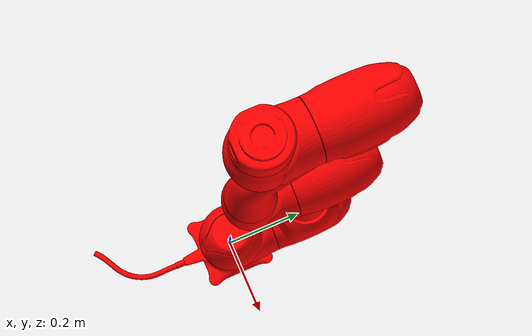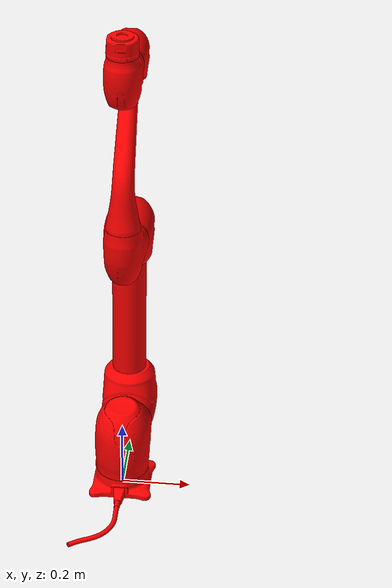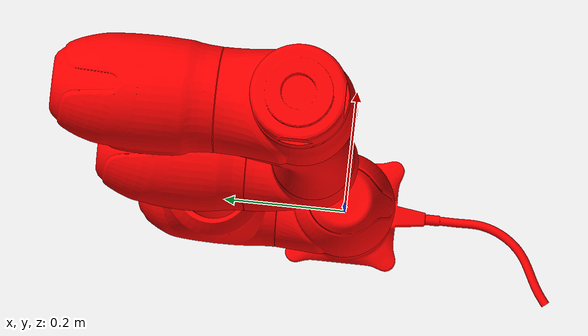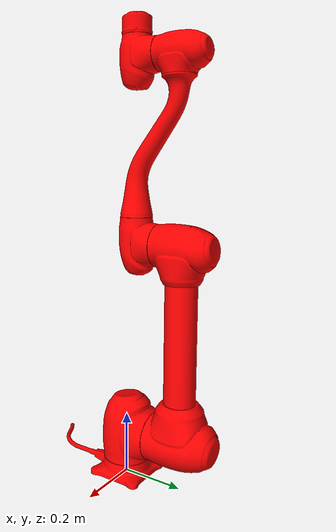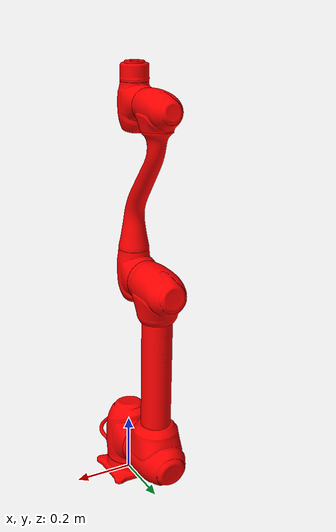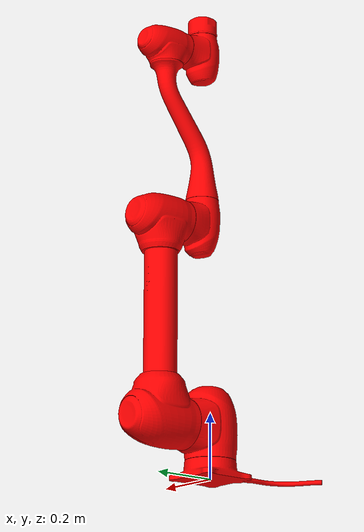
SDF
<sdf version='1.7'>
  <model name='m1013'>
    <pose>0 0 0 0 0 0</pose>
    <joint name='fixed_base' type='fixed'>
      <parent>world</parent>
      <child>base</child>
    </joint>
    <link name='base'>
      <inertial>
        <pose>-1.2e-05 -6e-05 0.050723 0 -0 0</pose>
        <mass>3.722</mass>
        <inertia>
          <ixx>0.011</ixx>
          <ixy>-7.19e-06</ixy>
          <ixz>-1.94e-06</ixz>
          <iyy>0.011</iyy>
          <iyz>4.9e-06</iyz>
          <izz>0.014</izz>
        </inertia>
      </inertial>
      <visual name='base_link_visual'>
        <pose>0 0 0 0 -0 0</pose>
        <geometry>
          <mesh>
            <scale>0.001 0.001 0.001</scale>
            <uri>model://m1013/meshes/MF1013_0_0.dae</uri>
          </mesh>
        </geometry>
      </visual>
    </link>
    <joint name='joint_1' type='revolute'>
      <pose relative_to='base'>0 0 0.1525 0 -0 0</pose>
      <parent>base</parent>
      <child>link_1</child>
      <axis>
        <xyz>0 0 1</xyz>
        <limit>
          <lower>-2.617</lower>
          <upper>2.617</upper>
          <effort>30</effort>
          <velocity>1.571</velocity>
        </limit>
        <dynamics>
          <spring_reference>0</spring_reference>
          <spring_stiffness>0</spring_stiffness>
        </dynamics>
      </axis>
    </joint>
    <link name='link_1'>
      <pose relative_to='joint_1'>0 0 0 0 -0 0</pose>
      <inertial>
        <pose>7e-05 0.044281 0.143327 0 -0 0</pose>
        <mass>7.446</mass>
        <inertia>
          <ixx>0.039</ixx>
          <ixy>2.1e-05</ixy>
          <ixz>-3.61e-05</ixz>
          <iyy>0.023</iyy>
          <iyz>-0.003</iyz>
          <izz>0.039</izz>
        </inertia>
      </inertial>
      <visual name='link_1_visual'>
        <pose>0 0 0 0 -0 0</pose>
        <geometry>
          <mesh>
            <scale>0.001 0.001 0.001</scale>
            <uri>model://m1013/meshes/MF1013_1_0.dae</uri>
          </mesh>
        </geometry>
      </visual>
    </link>
    <joint name='joint_2' type='revolute'>
      <pose relative_to='link_1'>0 0.0345 0 3.14159 -1.57059 1.57059</pose>
      <parent>link_1</parent>
      <child>link_2</child>
      <axis>
        <xyz>0 0 1</xyz>
        <limit>
          <lower>-2.617</lower>
          <upper>2.617</upper>
          <effort>30</effort>
          <velocity>1.571</velocity>
        </limit>
        <dynamics>
          <spring_reference>0</spring_reference>
          <spring_stiffness>0</spring_stiffness>
        </dynamics>
      </axis>
    </joint>
    <link name='link_2'>
      <pose relative_to='joint_2'>0 0 0 0 -0 0</pose>
      <inertial>
        <pose>-1.6e-05 0.189372 0.418558 0 -0 0</pose>
        <mass>10.569</mass>
        <inertia>
          <ixx>0.82</ixx>
          <ixy>1.19e-05</ixy>
          <ixz>-0.000263</ixz>
          <iyy>0.82</iyy>
          <iyz>-0.008</iyz>
          <izz>0.031</izz>
        </inertia>
      </inertial>
      <visual name='link_2_visual'>
        <pose>0 0 0 0 -0 0</pose>
        <geometry>
          <mesh>
            <scale>0.001 0.001 0.001</scale>
            <uri>model://m1013/meshes/MF1013_2_0.dae</uri>
          </mesh>
        </geometry>
      </visual>
      <visual name='link_2_visual_1'>
        <pose>0 0 0 0 -0 0</pose>
        <geometry>
          <mesh>
            <scale>0.001 0.001 0.001</scale>
            <uri>model://m1013/meshes/MF1013_2_1.dae</uri>
          </mesh>
        </geometry>
      </visual>
      <visual name='link_2_visual_2'>
        <pose>0 0 0 0 -0 0</pose>
        <geometry>
          <mesh>
            <scale>0.001 0.001 0.001</scale>
            <uri>model://m1013/meshes/MF1013_2_2.dae</uri>
          </mesh>
        </geometry>
      </visual>
    </link>
    <joint name='joint_3' type='revolute'>
      <pose relative_to='link_2'>0.62 0 0 0 -0 1.571</pose>
      <parent>link_2</parent>
      <child>link_3</child>
      <axis>
        <xyz>0 0 1</xyz>
        <limit>
          <lower>-2.617</lower>
          <upper>2.617</upper>
          <effort>30</effort>
          <velocity>1.571</velocity>
        </limit>
        <dynamics>
          <spring_reference>0</spring_reference>
          <spring_stiffness>0</spring_stiffness>
        </dynamics>
      </axis>
    </joint>
    <link name='link_3'>
      <pose relative_to='joint_3'>0 0 0 0 -0 0</pose>
      <inertial>
        <pose>6e-06 0.07917 0.781807 0 -0 0</pose>
        <mass>3.614</mass>
        <inertia>
          <ixx>0.012</ixx>
          <ixy>-4.38e-06</ixy>
          <ixz>-1.2e-06</ixz>
          <iyy>0.008</iyy>
          <iyz>0.002</iyz>
          <izz>0.011</izz>
        </inertia>
      </inertial>
      <visual name='link_3_visual'>
        <pose>0 0 0 0 -0 0</pose>
        <geometry>
          <mesh>
            <scale>0.001 0.001 0.001</scale>
            <uri>model://m1013/meshes/MF1013_3_0.dae</uri>
          </mesh>
        </geometry>
      </visual>
    </link>
    <joint name='joint_4' type='revolute'>
      <pose relative_to='link_3'>0 -0.559 0 1.571 -0 0</pose>
      <parent>link_3</parent>
      <child>link_4</child>
      <axis>
        <xyz>0 0 1</xyz>
        <limit>
          <lower>-2.617</lower>
          <upper>2.617</upper>
          <effort>30</effort>
          <velocity>1.571</velocity>
        </limit>
        <dynamics>
          <spring_reference>0</spring_reference>
          <spring_stiffness>0</spring_stiffness>
        </dynamics>
      </axis>
    </joint>
    <link name='link_4'>
      <pose relative_to='joint_4'>0 0 0 0 -0 0</pose>
      <inertial>
        <pose>-2.1e-05 0.12337 1.148 0 -0 0</pose>
        <mass>3.785</mass>
        <inertia>
          <ixx>0.177</ixx>
          <ixy>-2.34e-06</ixy>
          <ixz>-4.92e-06</ixz>
          <iyy>0.161</iyy>
          <iyz>-0.05</iyz>
          <izz>0.022</izz>
        </inertia>
      </inertial>
      <visual name='link_4_visual'>
        <pose>0 0 0 0 -0 0</pose>
        <geometry>
          <mesh>
            <scale>0.001 0.001 0.001</scale>
            <uri>model://m1013/meshes/MF1013_4_0.dae</uri>
          </mesh>
        </geometry>
      </visual>
      <visual name='link_4_visual_1'>
        <pose>0 0 0 0 -0 0</pose>
        <geometry>
          <mesh>
            <scale>0.001 0.001 0.001</scale>
            <uri>model://m1013/meshes/MF1013_4_1.dae</uri>
          </mesh>
        </geometry>
      </visual>
    </link>
    <joint name='joint_5' type='revolute'>
      <pose relative_to='link_4'>0 0 0 -1.571 0 0</pose>
      <parent>link_4</parent>
      <child>link_5</child>
      <axis>
        <xyz>0 0 1</xyz>
        <limit>
          <lower>-2.617</lower>
          <upper>2.617</upper>
          <effort>30</effort>
          <velocity>1.571</velocity>
        </limit>
        <dynamics>
          <spring_reference>0</spring_reference>
          <spring_stiffness>0</spring_stiffness>
        </dynamics>
      </axis>
    </joint>
    <link name='link_5'>
      <pose relative_to='joint_5'>0 0 0 0 -0 0</pose>
      <inertial>
        <pose>-1.7e-05 0.06662 1.33103 0 -0 0</pose>
        <mass>2.598</mass>
        <inertia>
          <ixx>0.007</ixx>
          <ixy>-4.93e-06</ixy>
          <ixz>-5.57e-06</ixz>
          <iyy>0.004</iyy>
          <iyz>-6.64e-05</iyz>
          <izz>0.007</izz>
        </inertia>
      </inertial>
      <visual name='link_5_visual'>
        <pose>0 0 0 0 -0 0</pose>
        <geometry>
          <mesh>
            <scale>0.001 0.001 0.001</scale>
            <uri>model://m1013/meshes/MF1013_5_0.dae</uri>
          </mesh>
        </geometry>
      </visual>
    </link>
    <joint name='joint_6' type='revolute'>
      <pose relative_to='link_5'>0 -0.121 0 1.571 -0 0</pose>
      <parent>link_5</parent>
      <child>link_6</child>
      <axis>
        <xyz>0 0 1</xyz>
        <limit>
          <lower>-2.617</lower>
          <upper>2.617</upper>
          <effort>30</effort>
          <velocity>1.571</velocity>
        </limit>
        <dynamics>
          <spring_reference>0</spring_reference>
          <spring_stiffness>0</spring_stiffness>
        </dynamics>
      </axis>
    </joint>
    <link name='link_6'>
      <pose relative_to='joint_6'>0 0 0 0 -0 0</pose>
      <inertial>
        <pose>-0.000174 0.034708 1.40022 0 -0 0</pose>
        <mass>1.128</mass>
        <inertia>
          <ixx>0.001</ixx>
          <ixy>-2.79e-06</ixy>
          <ixz>5.78e-06</ixz>
          <iyy>0.001</iyy>
          <iyz>-6.67e-06</iyz>
          <izz>0.001</izz>
        </inertia>
      </inertial>
      <visual name='link_6_visual'>
        <pose>0 0 0 0 -0 0</pose>
        <geometry>
          <mesh>
            <scale>0.001 0.001 0.001</scale>
            <uri>model://m1013/meshes/MF1013_6_0.dae</uri>
          </mesh>
        </geometry>
      </visual>
    </link>
    <transmission name="tran1">
        <type>transmission_interface/SimpleTransmission</type>
        <joint name="joint_1">
            <hardwareInterface>hardware_interface/PositionJointInterface</hardwareInterface>
        </joint>
        <actuator name="motor1">
            <hardwareInterface>hardware_interface/PositionJointInterface</hardwareInterface>
            <mechanicalReduction>1</mechanicalReduction>
        </actuator>
    </transmission>
    <!-- Transmission 2 -->
    <transmission name="tran2">
        <type>transmission_interface/SimpleTransmission</type>
        <joint name="joint_2">
            <hardwareInterface>hardware_interface/PositionJointInterface</hardwareInterface>
        </joint>
        <actuator name="motor2">
            <hardwareInterface>hardware_interface/PositionJointInterface</hardwareInterface>
            <mechanicalReduction>1</mechanicalReduction>
        </actuator>
    </transmission>
    <!-- Transmission 3 -->
    <transmission name="tran3">
        <type>transmission_interface/SimpleTransmission</type>
        <joint name="joint_3">
            <hardwareInterface>hardware_interface/PositionJointInterface</hardwareInterface>
        </joint>
        <actuator name="motor3">
            <hardwareInterface>hardware_interface/PositionJointInterface</hardwareInterface>
            <mechanicalReduction>1</mechanicalReduction>
        </actuator>
    </transmission>
    <!-- Transmission 4 -->
    <transmission name="tran4">
        <type>transmission_interface/SimpleTransmission</type>
        <joint name="joint_4">
            <hardwareInterface>hardware_interface/PositionJointInterface</hardwareInterface>
        </joint>
        <actuator name="motor4">
            <hardwareInterface>hardware_interface/PositionJointInterface</hardwareInterface>
            <mechanicalReduction>1</mechanicalReduction>
        </actuator>
    </transmission>
    <!-- Transmission 5 -->
    <transmission name="tran5">
        <type>transmission_interface/SimpleTransmission</type>
        <joint name="joint_5">
            <hardwareInterface>hardware_interface/PositionJointInterface</hardwareInterface>
        </joint>
        <actuator name="motor5">
            <hardwareInterface>hardware_interface/PositionJointInterface</hardwareInterface>
            <mechanicalReduction>1</mechanicalReduction>
        </actuator>
    </transmission>
    <!-- Transmission 6 -->
    <transmission name="tran6">
        <type>transmission_interface/SimpleTransmission</type>
        <joint name="joint_6">
            <hardwareInterface>hardware_interface/PositionJointInterface</hardwareInterface>
        </joint>
        <actuator name="motor6">
            <hardwareInterface>hardware_interface/PositionJointInterface</hardwareInterface>
            <mechanicalReduction>1</mechanicalReduction>
        </actuator>
    </transmission>
    <gazebo>
        <plugin filename="libgazebo_ros2_control.so" name="gazebo_ros2_control">
            <robot_sim_type>gazebo_ros2_control/DefaultRobotHWSim</robot_sim_type>
            <parameters>$(find dsr_gazebo)/config/dsr_control.yaml</parameters>
        </plugin>
    </gazebo>
  </model>
</sdf>
